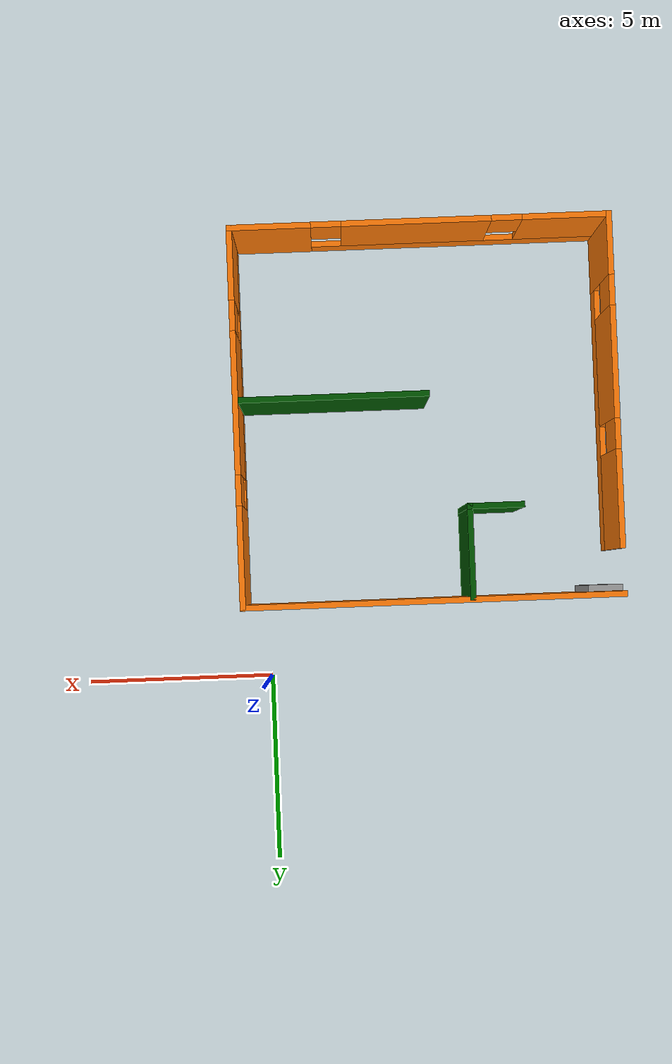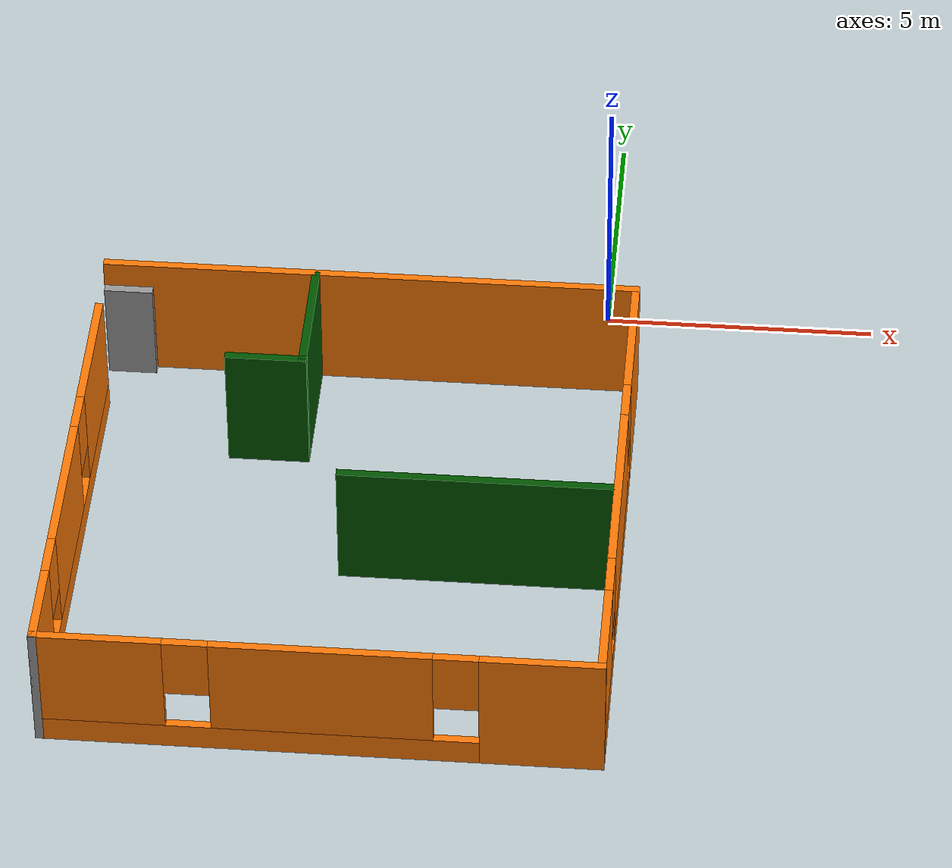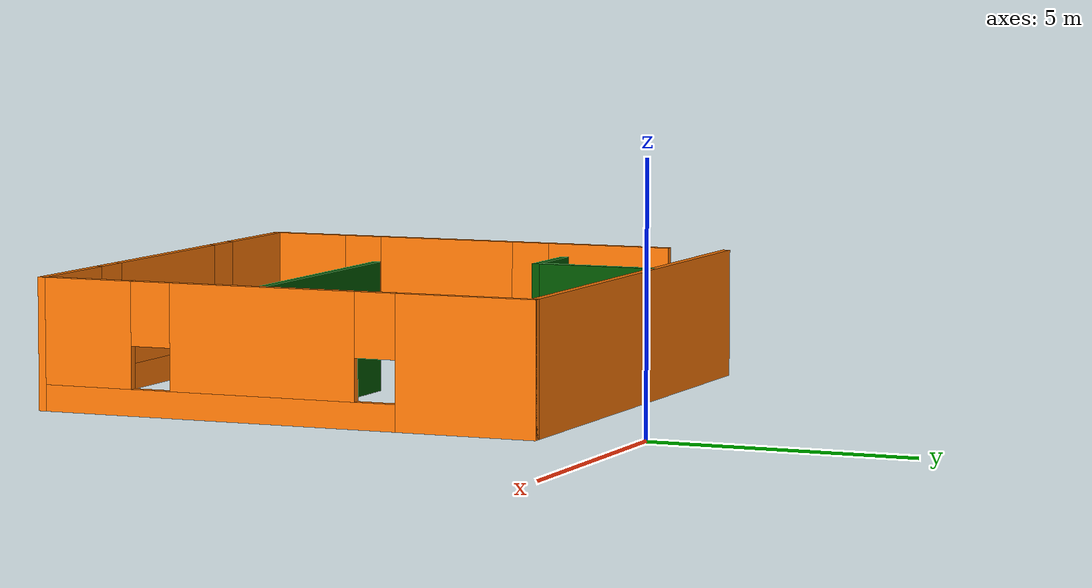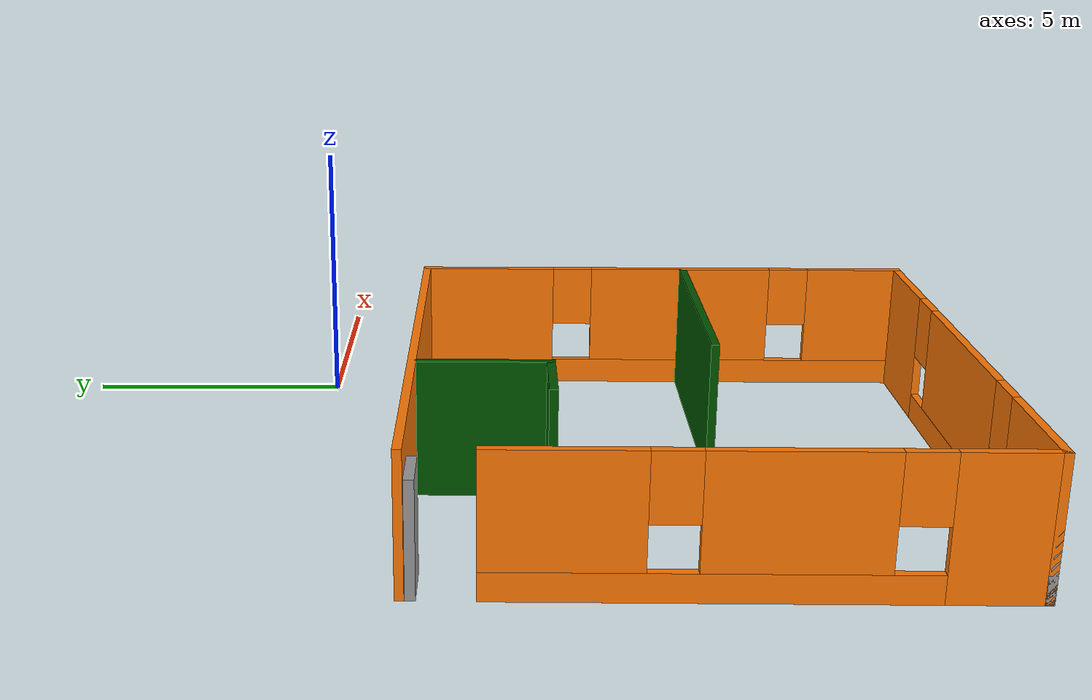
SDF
<?xml version='1.0'?>
<sdf version='1.6'>
  <model name='model'>
    <pose frame=''>-4.33027 -6.82962 0 0 -0 0</pose>
    <link name='Door_0'>
      <collision name='Door_0_Collision'>
        <geometry>
          <box>
            <size>0.9 0.17 2</size>
          </box>
        </geometry>
        <pose frame=''>0 0 1 0 -0 0</pose>
      </collision>
      <visual name='Door_0_Visual'>
        <pose frame=''>0 0 1 0 -0 0</pose>
        <geometry>
          <box>
            <size>0.9 0.17 2</size>
          </box>
        </geometry>
        <material>
          <script>
            <uri>file://media/materials/scripts/gazebo.material</uri>
            <name>Gazebo/Grey</name>
          </script>
        </material>
      </visual>
      <pose frame=''>-4.53143 4.75921 0 0 -0 0</pose>
    </link>
    <link name='Wall_11'>
      <pose frame=''>-4.925 -0.625 0 0 -0 1.5708</pose>
      <visual name='Wall_11_Visual_0'>
        <pose frame=''>-3.54616 0 1.25 0 -0 0</pose>
        <geometry>
          <box>
            <size>1.65768 0.15 2.5</size>
          </box>
        </geometry>
        <material>
          <script>
            <uri>file://media/materials/scripts/gazebo.material</uri>
            <name>Gazebo/Grey</name>
          </script>
          <ambient>0.996078 0.47451 0.0196078 1</ambient>
        </material>
        <meta>
          <layer>0</layer>
        </meta>
      </visual>
      <collision name='Wall_11_Collision_0'>
        <geometry>
          <box>
            <size>1.65768 0.15 2.5</size>
          </box>
        </geometry>
        <pose frame=''>-3.54616 0 1.25 0 -0 0</pose>
      </collision>
      <visual name='Wall_11_Visual_1'>
        <pose frame=''>0.828841 0 0.25 0 -0 0</pose>
        <geometry>
          <box>
            <size>7.09232 0.15 0.5</size>
          </box>
        </geometry>
        <material>
          <script>
            <uri>file://media/materials/scripts/gazebo.material</uri>
            <name>Gazebo/Grey</name>
          </script>
          <ambient>0.996078 0.47451 0.0196078 1</ambient>
        </material>
        <meta>
          <layer>0</layer>
        </meta>
      </visual>
      <collision name='Wall_11_Collision_1'>
        <geometry>
          <box>
            <size>7.09232 0.15 0.5</size>
          </box>
        </geometry>
        <pose frame=''>0.828841 0 0.25 0 -0 0</pose>
      </collision>
      <visual name='Wall_11_Visual_2'>
        <pose frame=''>-0.456361 0 1.5 0 -0 0</pose>
        <geometry>
          <box>
            <size>2.92191 0.15 2</size>
          </box>
        </geometry>
        <material>
          <script>
            <uri>file://media/materials/scripts/gazebo.material</uri>
            <name>Gazebo/Grey</name>
          </script>
          <ambient>0.996078 0.47451 0.0196078 1</ambient>
        </material>
        <meta>
          <layer>0</layer>
        </meta>
      </visual>
      <collision name='Wall_11_Collision_2'>
        <geometry>
          <box>
            <size>2.92191 0.15 2</size>
          </box>
        </geometry>
        <pose frame=''>-0.456361 0 1.5 0 -0 0</pose>
      </collision>
      <visual name='Wall_11_Visual_3'>
        <pose frame=''>3.0898 0 1.5 0 -0 0</pose>
        <geometry>
          <box>
            <size>2.57041 0.15 2</size>
          </box>
        </geometry>
        <material>
          <script>
            <uri>file://media/materials/scripts/gazebo.material</uri>
            <name>Gazebo/Grey</name>
          </script>
          <ambient>0.996078 0.47451 0.0196078 1</ambient>
        </material>
        <meta>
          <layer>0</layer>
        </meta>
      </visual>
      <collision name='Wall_11_Collision_3'>
        <geometry>
          <box>
            <size>2.57041 0.15 2</size>
          </box>
        </geometry>
        <pose frame=''>3.0898 0 1.5 0 -0 0</pose>
      </collision>
      <visual name='Wall_11_Visual_4'>
        <pose frame=''>-2.31732 0 1.9 0 -0 0</pose>
        <geometry>
          <box>
            <size>0.8 0.15 1.2</size>
          </box>
        </geometry>
        <material>
          <script>
            <uri>file://media/materials/scripts/gazebo.material</uri>
            <name>Gazebo/Grey</name>
          </script>
          <ambient>0.996078 0.47451 0.0196078 1</ambient>
        </material>
        <meta>
          <layer>0</layer>
        </meta>
      </visual>
      <collision name='Wall_11_Collision_4'>
        <geometry>
          <box>
            <size>0.8 0.15 1.2</size>
          </box>
        </geometry>
        <pose frame=''>-2.31732 0 1.9 0 -0 0</pose>
      </collision>
      <visual name='Wall_11_Visual_5'>
        <pose frame=''>1.4046 0 1.9 0 -0 0</pose>
        <geometry>
          <box>
            <size>0.8 0.15 1.2</size>
          </box>
        </geometry>
        <material>
          <script>
            <uri>file://media/materials/scripts/gazebo.material</uri>
            <name>Gazebo/Grey</name>
          </script>
          <ambient>0.996078 0.47451 0.0196078 1</ambient>
        </material>
        <meta>
          <layer>0</layer>
        </meta>
      </visual>
      <collision name='Wall_11_Collision_5'>
        <geometry>
          <box>
            <size>0.8 0.15 1.2</size>
          </box>
        </geometry>
        <pose frame=''>1.4046 0 1.9 0 -0 0</pose>
      </collision>
    </link>
    <link name='Wall_13'>
      <collision name='Wall_13_Collision'>
        <geometry>
          <box>
            <size>5 0.15 2.5</size>
          </box>
        </geometry>
        <pose frame=''>0 0 1.25 0 -0 0</pose>
      </collision>
      <visual name='Wall_13_Visual'>
        <pose frame=''>0 0 1.25 0 -0 0</pose>
        <geometry>
          <box>
            <size>5 0.15 2.5</size>
          </box>
        </geometry>
        <material>
          <script>
            <uri>file://media/materials/scripts/gazebo.material</uri>
            <name>Gazebo/Grey</name>
          </script>
          <ambient>0 0.333333 0 1</ambient>
        </material>
        <meta>
          <layer>0</layer>
        </meta>
      </visual>
      <pose frame=''>2.38936 -0.443711 0 0 -0 3.14159</pose>
    </link>
    <link name='Wall_15'>
      <collision name='Wall_15_Collision'>
        <geometry>
          <box>
            <size>2.5 0.15 2.5</size>
          </box>
        </geometry>
        <pose frame=''>0 0 1.25 0 -0 0</pose>
      </collision>
      <visual name='Wall_15_Visual'>
        <pose frame=''>0 0 1.25 0 -0 0</pose>
        <geometry>
          <box>
            <size>2.5 0.15 2.5</size>
          </box>
        </geometry>
        <material>
          <script>
            <uri>file://media/materials/scripts/gazebo.material</uri>
            <name>Gazebo/Grey</name>
          </script>
          <ambient>0 0.333333 0 1</ambient>
        </material>
        <meta>
          <layer>0</layer>
        </meta>
      </visual>
      <pose frame=''>-1.02602 3.69136 0 0 0 -1.5708</pose>
    </link>
    <link name='Wall_16'>
      <collision name='Wall_16_Collision'>
        <geometry>
          <box>
            <size>1.5 0.15 2.5</size>
          </box>
        </geometry>
        <pose frame=''>0 0 1.25 0 -0 0</pose>
      </collision>
      <visual name='Wall_16_Visual'>
        <pose frame=''>0 0 1.25 0 -0 0</pose>
        <geometry>
          <box>
            <size>1.5 0.15 2.5</size>
          </box>
        </geometry>
        <material>
          <script>
            <uri>file://media/materials/scripts/gazebo.material</uri>
            <name>Gazebo/Grey</name>
          </script>
          <ambient>0 0.333333 0 1</ambient>
        </material>
        <meta>
          <layer>0</layer>
        </meta>
      </visual>
      <pose frame=''>-1.70102 2.51636 0 0 -0 3.14159</pose>
    </link>
    <link name='Wall_4'>
      <collision name='Wall_4_Collision'>
        <geometry>
          <box>
            <size>10 0.15 2.5</size>
          </box>
        </geometry>
        <pose frame=''>0 0 1.25 0 -0 0</pose>
      </collision>
      <visual name='Wall_4_Visual'>
        <pose frame=''>0 0 1.25 0 -0 0</pose>
        <geometry>
          <box>
            <size>10 0.15 2.5</size>
          </box>
        </geometry>
        <material>
          <script>
            <uri>file://media/materials/scripts/gazebo.material</uri>
            <name>Gazebo/Grey</name>
          </script>
          <ambient>0.996078 0.47451 0.0196078 1</ambient>
        </material>
        <meta>
          <layer>0</layer>
        </meta>
      </visual>
      <pose frame=''>0 4.925 0 0 -0 0</pose>
    </link>
    <link name='Wall_6'>
      <pose frame=''>4.925 0 0 0 0 -1.5708</pose>
      <visual name='Wall_6_Visual_0'>
        <pose frame=''>-3.63595 0 1.25 0 -0 0</pose>
        <geometry>
          <box>
            <size>2.7281 0.15 2.5</size>
          </box>
        </geometry>
        <material>
          <script>
            <uri>file://media/materials/scripts/gazebo.material</uri>
            <name>Gazebo/Grey</name>
          </script>
          <ambient>0.996078 0.47451 0.0196078 1</ambient>
        </material>
        <meta>
          <layer>0</layer>
        </meta>
      </visual>
      <collision name='Wall_6_Collision_0'>
        <geometry>
          <box>
            <size>2.7281 0.15 2.5</size>
          </box>
        </geometry>
        <pose frame=''>-3.63595 0 1.25 0 -0 0</pose>
      </collision>
      <visual name='Wall_6_Visual_1'>
        <pose frame=''>1.36405 0 0.25 0 -0 0</pose>
        <geometry>
          <box>
            <size>7.2719 0.15 0.5</size>
          </box>
        </geometry>
        <material>
          <script>
            <uri>file://media/materials/scripts/gazebo.material</uri>
            <name>Gazebo/Grey</name>
          </script>
          <ambient>0.996078 0.47451 0.0196078 1</ambient>
        </material>
        <meta>
          <layer>0</layer>
        </meta>
      </visual>
      <collision name='Wall_6_Collision_1'>
        <geometry>
          <box>
            <size>7.2719 0.15 0.5</size>
          </box>
        </geometry>
        <pose frame=''>1.36405 0 0.25 0 -0 0</pose>
      </collision>
      <visual name='Wall_6_Visual_2'>
        <pose frame=''>0.393617 0 1.5 0 -0 0</pose>
        <geometry>
          <box>
            <size>3.73102 0.15 2</size>
          </box>
        </geometry>
        <material>
          <script>
            <uri>file://media/materials/scripts/gazebo.material</uri>
            <name>Gazebo/Grey</name>
          </script>
          <ambient>0.996078 0.47451 0.0196078 1</ambient>
        </material>
        <meta>
          <layer>0</layer>
        </meta>
      </visual>
      <collision name='Wall_6_Collision_2'>
        <geometry>
          <box>
            <size>3.73102 0.15 2</size>
          </box>
        </geometry>
        <pose frame=''>0.393617 0 1.5 0 -0 0</pose>
      </collision>
      <visual name='Wall_6_Visual_3'>
        <pose frame=''>4.02956 0 1.5 0 -0 0</pose>
        <geometry>
          <box>
            <size>1.94087 0.15 2</size>
          </box>
        </geometry>
        <material>
          <script>
            <uri>file://media/materials/scripts/gazebo.material</uri>
            <name>Gazebo/Grey</name>
          </script>
          <ambient>0.996078 0.47451 0.0196078 1</ambient>
        </material>
        <meta>
          <layer>0</layer>
        </meta>
      </visual>
      <collision name='Wall_6_Collision_3'>
        <geometry>
          <box>
            <size>1.94087 0.15 2</size>
          </box>
        </geometry>
        <pose frame=''>4.02956 0 1.5 0 -0 0</pose>
      </collision>
      <visual name='Wall_6_Visual_4'>
        <pose frame=''>-1.8719 0 1.9 0 -0 0</pose>
        <geometry>
          <box>
            <size>0.8 0.15 1.2</size>
          </box>
        </geometry>
        <material>
          <script>
            <uri>file://media/materials/scripts/gazebo.material</uri>
            <name>Gazebo/Grey</name>
          </script>
          <ambient>0.996078 0.47451 0.0196078 1</ambient>
        </material>
        <meta>
          <layer>0</layer>
        </meta>
      </visual>
      <collision name='Wall_6_Collision_4'>
        <geometry>
          <box>
            <size>0.8 0.15 1.2</size>
          </box>
        </geometry>
        <pose frame=''>-1.8719 0 1.9 0 -0 0</pose>
      </collision>
      <visual name='Wall_6_Visual_5'>
        <pose frame=''>2.65913 0 1.9 0 -0 0</pose>
        <geometry>
          <box>
            <size>0.8 0.15 1.2</size>
          </box>
        </geometry>
        <material>
          <script>
            <uri>file://media/materials/scripts/gazebo.material</uri>
            <name>Gazebo/Grey</name>
          </script>
          <ambient>0.996078 0.47451 0.0196078 1</ambient>
        </material>
        <meta>
          <layer>0</layer>
        </meta>
      </visual>
      <collision name='Wall_6_Collision_5'>
        <geometry>
          <box>
            <size>0.8 0.15 1.2</size>
          </box>
        </geometry>
        <pose frame=''>2.65913 0 1.9 0 -0 0</pose>
      </collision>
    </link>
    <link name='Wall_7'>
      <pose frame=''>0 -4.925 0 0 -0 3.14159</pose>
      <visual name='Wall_7_Visual_0'>
        <pose frame=''>-3.9051 0 1.25 0 -0 0</pose>
        <geometry>
          <box>
            <size>2.1898 0.15 2.5</size>
          </box>
        </geometry>
        <material>
          <script>
            <uri>file://media/materials/scripts/gazebo.material</uri>
            <name>Gazebo/Grey</name>
          </script>
          <ambient>0.996078 0.47451 0.0196078 1</ambient>
        </material>
        <meta>
          <layer>0</layer>
        </meta>
      </visual>
      <collision name='Wall_7_Collision_0'>
        <geometry>
          <box>
            <size>2.1898 0.15 2.5</size>
          </box>
        </geometry>
        <pose frame=''>-3.9051 0 1.25 0 -0 0</pose>
      </collision>
      <visual name='Wall_7_Visual_1'>
        <pose frame=''>1.0949 0 0.25 0 -0 0</pose>
        <geometry>
          <box>
            <size>7.8102 0.15 0.5</size>
          </box>
        </geometry>
        <material>
          <script>
            <uri>file://media/materials/scripts/gazebo.material</uri>
            <name>Gazebo/Grey</name>
          </script>
          <ambient>0.996078 0.47451 0.0196078 1</ambient>
        </material>
        <meta>
          <layer>0</layer>
        </meta>
      </visual>
      <collision name='Wall_7_Collision_1'>
        <geometry>
          <box>
            <size>7.8102 0.15 0.5</size>
          </box>
        </geometry>
        <pose frame=''>1.0949 0 0.25 0 -0 0</pose>
      </collision>
      <visual name='Wall_7_Visual_2'>
        <pose frame=''>-0.063779 0 1.5 0 -0 0</pose>
        <geometry>
          <box>
            <size>3.89285 0.15 2</size>
          </box>
        </geometry>
        <material>
          <script>
            <uri>file://media/materials/scripts/gazebo.material</uri>
            <name>Gazebo/Grey</name>
          </script>
          <ambient>0.996078 0.47451 0.0196078 1</ambient>
        </material>
        <meta>
          <layer>0</layer>
        </meta>
      </visual>
      <collision name='Wall_7_Collision_2'>
        <geometry>
          <box>
            <size>3.89285 0.15 2</size>
          </box>
        </geometry>
        <pose frame=''>-0.063779 0 1.5 0 -0 0</pose>
      </collision>
      <visual name='Wall_7_Visual_3'>
        <pose frame=''>3.84132 0 1.5 0 -0 0</pose>
        <geometry>
          <box>
            <size>2.31736 0.15 2</size>
          </box>
        </geometry>
        <material>
          <script>
            <uri>file://media/materials/scripts/gazebo.material</uri>
            <name>Gazebo/Grey</name>
          </script>
          <ambient>0.996078 0.47451 0.0196078 1</ambient>
        </material>
        <meta>
          <layer>0</layer>
        </meta>
      </visual>
      <collision name='Wall_7_Collision_3'>
        <geometry>
          <box>
            <size>2.31736 0.15 2</size>
          </box>
        </geometry>
        <pose frame=''>3.84132 0 1.5 0 -0 0</pose>
      </collision>
      <visual name='Wall_7_Visual_4'>
        <pose frame=''>-2.4102 0 1.9 0 -0 0</pose>
        <geometry>
          <box>
            <size>0.8 0.15 1.2</size>
          </box>
        </geometry>
        <material>
          <script>
            <uri>file://media/materials/scripts/gazebo.material</uri>
            <name>Gazebo/Grey</name>
          </script>
          <ambient>0.996078 0.47451 0.0196078 1</ambient>
        </material>
        <meta>
          <layer>0</layer>
        </meta>
      </visual>
      <collision name='Wall_7_Collision_4'>
        <geometry>
          <box>
            <size>0.8 0.15 1.2</size>
          </box>
        </geometry>
        <pose frame=''>-2.4102 0 1.9 0 -0 0</pose>
      </collision>
      <visual name='Wall_7_Visual_5'>
        <pose frame=''>2.28265 0 1.9 0 -0 0</pose>
        <geometry>
          <box>
            <size>0.8 0.15 1.2</size>
          </box>
        </geometry>
        <material>
          <script>
            <uri>file://media/materials/scripts/gazebo.material</uri>
            <name>Gazebo/Grey</name>
          </script>
          <ambient>0.996078 0.47451 0.0196078 1</ambient>
        </material>
        <meta>
          <layer>0</layer>
        </meta>
      </visual>
      <collision name='Wall_7_Collision_5'>
        <geometry>
          <box>
            <size>0.8 0.15 1.2</size>
          </box>
        </geometry>
        <pose frame=''>2.28265 0 1.9 0 -0 0</pose>
      </collision>
    </link>
    <link name='Wall_8'>
      <collision name='Wall_8_Collision'>
        <geometry>
          <box>
            <size>0.15 0.15 2.5</size>
          </box>
        </geometry>
        <pose frame=''>0 0 1.25 0 -0 0</pose>
      </collision>
      <visual name='Wall_8_Visual'>
        <pose frame=''>0 0 1.25 0 -0 0</pose>
        <geometry>
          <box>
            <size>0.15 0.15 2.5</size>
          </box>
        </geometry>
        <material>
          <script>
            <uri>file://media/materials/scripts/gazebo.material</uri>
            <name>Gazebo/Grey</name>
          </script>
          <ambient>1 1 1 1</ambient>
        </material>
        <meta>
          <layer>0</layer>
        </meta>
      </visual>
      <pose frame=''>-4.925 -4.925 0 0 -0 0</pose>
    </link>
    <static>1</static>
  </model>
</sdf>
